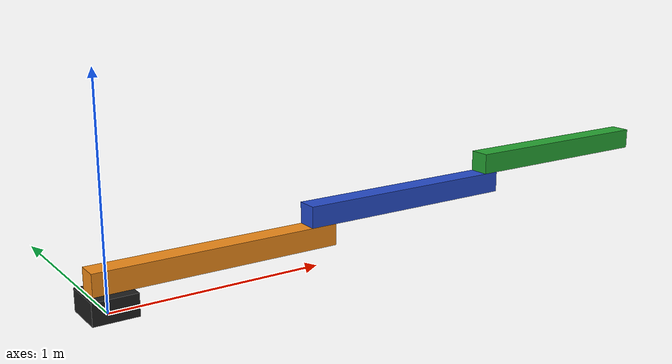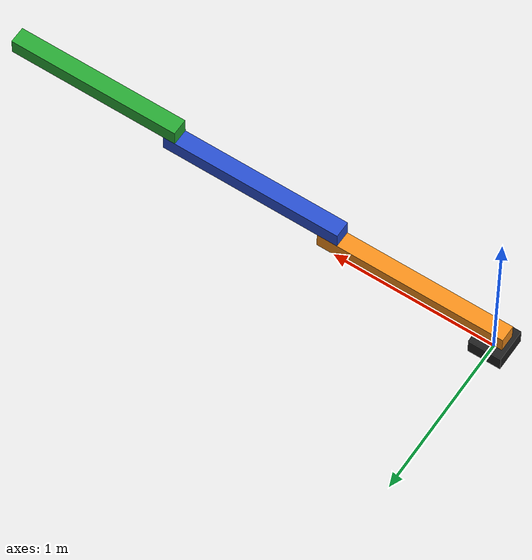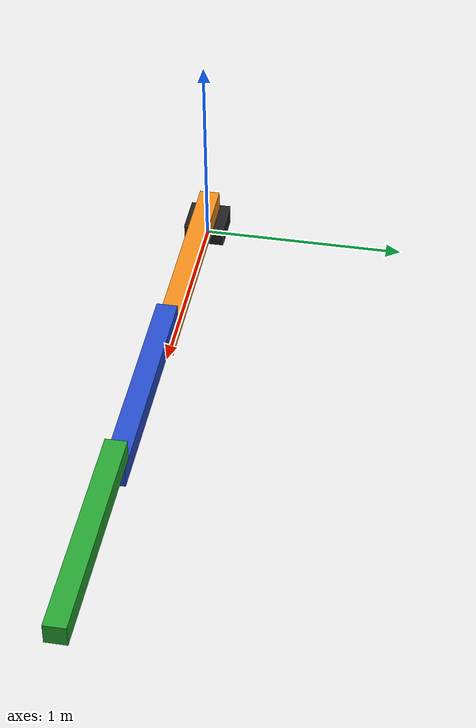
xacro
<?xml version="1.0"?>
<!-- RRR Planer Manipulator XY plane-->
<robot name="rrr" xmlns:xacro="http://www.ros.org/wiki/xacro">

  <!-- Constants for robot dimensions -->
  <xacro:property name="mass" value="1" />
  <xacro:property name="width" value="0.1" />
  <xacro:property name="width1" value="0.2" />
  <xacro:property name="height1" value="0.1" />
  <xacro:property name="height2" value="1.1" />
  <xacro:property name="height3" value="1.1" />
  <xacro:property name="height4" value="1.05" />

  <xacro:property name="axel_offset" value="0.05" />

  <xacro:include filename="$(find rangeaero_assignment)/rrr_description/urdf/rrr.gazebo" />
  <xacro:include filename="$(find rangeaero_assignment)/rrr_description/urdf/materials.xacro" />

  <link name="world"/>

  <joint name="fixed" type="fixed">
    <parent link="world"/>
    <child link="link1"/>
  </joint>

  <link name="link1">
    <collision>
      <origin xyz="0 0 ${height1/2}" rpy="0 0 0"/>
      <geometry>
	<box size="${width1} ${width1} ${height1}"/>
      </geometry>
    </collision>

    <visual>
      <origin xyz="0 0 ${height1/2}" rpy="0 0 0"/>
      <geometry>
	<box size="${width1} ${width1} ${height1}"/>
      </geometry>
      <material name="black"/>
    </visual>

    <inertial>
      <origin xyz="0 0 ${height1/2}" rpy="0 0 0"/>
      <mass value="${mass}"/>
      <inertia
	  ixx="${mass / 12.0 * (width1*width1 + height1*height1)}" ixy="0.0" ixz="0.0"
	  iyy="${mass / 12.0 * (height1*height1 + width1*width1)}" iyz="0.0"
	  izz="${mass / 12.0 * (width1*width1 + width1*width1)}"/>
    </inertial>
  </link>

  <joint name="joint1" type="revolute">
    <limit effort="10000" lower="-2.967" upper="2.967" velocity="0.5"/>
    <parent link="link1"/>
    <child link="link2"/>
    <origin xyz="0 0 0.15" rpy="0 0 0"/>
    <axis xyz="0 0 1"/>
    <dynamics damping="0.7"/>
  </joint>

  <link name="link2">
    <collision>
      <origin xyz="0.5 0 0" rpy="0 0 0"/>
      <geometry>
	<box size="1.15 0.1 0.1"/>
      </geometry>
    </collision>

    <visual>
      <origin xyz="0.5 0 0" rpy="0 0 0"/>
      <geometry>
	<box size="1.15 0.1 0.1"/>
      </geometry>
      <material name="orange"/>
    </visual>

    <inertial>
      <origin xyz="0.5 0 0" rpy="0 0 0"/>
      <mass value="${mass}"/>
      <inertia
	  ixx="${mass / 12.0 * (0.1*0.1 + 0.1*0.1)}" ixy="0.0" ixz="0.0"
	  iyy="${mass / 12.0 * (0.1*0.1 + 1.15*1.15)}" iyz="0.0"
	  izz="${mass / 12.0 * (0.1*0.1 + 1.15*1.15)}"/>
    </inertial>
  </link>

  <joint name="joint2" type="revolute">
    <limit effort="10000" lower="-2.967" upper="2.967" velocity="0.5"/>
    <parent link="link2"/>
    <child link="link3"/>
    <origin xyz="1 0 0.05" rpy="0 0 0"/>
    <axis xyz="0 0 1"/>
    <dynamics damping="0.7"/>
  </joint>

  <link name="link3">
    <collision>
      <origin xyz="0.5 0 0.05" rpy="0 0 0"/>
      <geometry>
	<box size="1.1 0.1 0.1"/>
      </geometry>
    </collision>

    <visual>
      <origin xyz="0.5 0 0.05" rpy="0 0 0"/>
      <geometry>
	<box size="1.1 0.1 0.1"/>
      </geometry>
      <material name="blue"/>
    </visual>

    <inertial>
      <origin xyz="0.5 0 0.05" rpy="0 0 0"/>
      <mass value="${mass}"/>
      <inertia
	  ixx="${mass / 12.0 * (0.1*0.1 + 0.1*0.1)}" ixy="0.0" ixz="0.0"
	  iyy="${mass / 12.0 * (0.1*0.1 + 0.1*0.1)}" iyz="0.0"
	  izz="${mass / 12.0 * (0.1*0.1 + 1.1*1.1)}"/>
    </inertial>
  </link>

  <joint name="joint3" type="revolute">
    <limit effort="10000" lower="-2.967" upper="2.967" velocity="0.5"/>
    <parent link="link3"/>
    <child link="link4"/>
    <origin xyz="1 0 0.1" rpy="0 0 0"/>
    <axis xyz="0 0 1"/>
    <dynamics damping="0.7"/>
  </joint>

  <link name="link4">
    <collision>
      <origin xyz="0.5 0 0.05" rpy="0 0 0"/>
      <geometry>
	<box size="1.05 0.1 0.1"/>
      </geometry>
    </collision>

    <visual>
      <origin xyz="0.5 0 0.05" rpy="0 0 0"/>
      <geometry>
	<box size="1.05 0.1 0.1"/>
      </geometry>
      <material name="green"/>
    </visual>

    <inertial>
      <origin xyz="0.5 0 0.05" rpy="0 0 0"/>
      <mass value="${mass}"/>
      <inertia
	  ixx="${mass / 12.0 * (0.1*0.1 + 0.1*0.1)}" ixy="0.0" ixz="0.0"
	  iyy="${mass / 12.0 * (1.05*1.05 + 0.1*0.1)}" iyz="0.0"
	  izz="${mass / 12.0 * (1.05*1.05 + 0.1*0.1)}"/>
    </inertial>
  </link>

  <transmission name="tran1">
    <type>transmission_interface/SimpleTransmission</type>
    <joint name="joint1">
      <hardwareInterface>hardware_interface/EffortJointInterface</hardwareInterface>
    </joint>
    <actuator name="motor1">
      <hardwareInterface>hardware_interface/EffortJointInterface</hardwareInterface>
      <mechanicalReduction>1</mechanicalReduction>
    </actuator>
  </transmission>

  <transmission name="tran2">
    <type>transmission_interface/SimpleTransmission</type>
    <joint name="joint2">
      <hardwareInterface>hardware_interface/EffortJointInterface</hardwareInterface>
    </joint>
    <actuator name="motor2">
      <hardwareInterface>hardware_interface/EffortJointInterface</hardwareInterface>
      <mechanicalReduction>1</mechanicalReduction>
    </actuator>
  </transmission>

  <transmission name="tran3">
    <type>transmission_interface/SimpleTransmission</type>
    <joint name="joint3">
      <hardwareInterface>hardware_interface/EffortJointInterface</hardwareInterface>
    </joint>
    <actuator name="motor3">
      <hardwareInterface>hardware_interface/EffortJointInterface</hardwareInterface>
      <mechanicalReduction>1</mechanicalReduction>
    </actuator>
  </transmission>

</robot>
